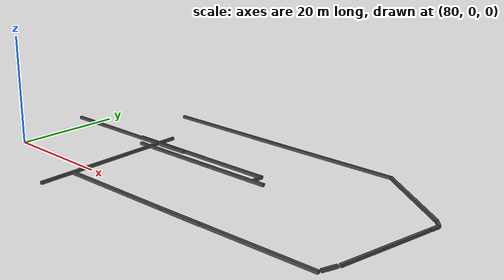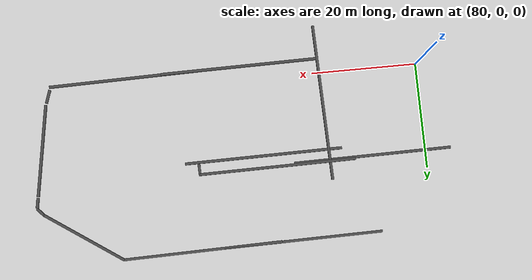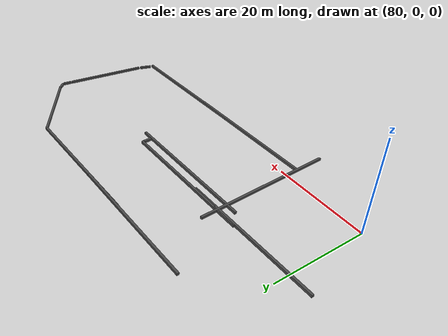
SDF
<sdf version="1.6">
 <world name="default">
  <model name="asphalt_box_clone_9_clone_clone_0">
   <static>1</static>
   <link name="link">
    <collision name="collision"><geometry><box><size>30 0.5 0.5</size></box></geometry></collision>
    <visual name="visual">
     <cast_shadows>0</cast_shadows>
     <geometry><box><size>30 0.5 0.5</size></box></geometry>
     <material>
      <script>
       <uri>model://asphalt_box/materials/scripts</uri>
       <uri>model://asphalt_box/materials/textures</uri>
       <name>vrc/asphalt</name>
      </script>
     </material>
    </visual>
   </link>
   <pose>104.684 31.4537 0 0 -0 0.016111</pose>
  </model>
  <model name="asphalt_box_clone_9_clone_clone_1">
   <static>1</static>
   <link name="link">
    <collision name="collision"><geometry><box><size>30 0.5 0.5</size></box></geometry></collision>
    <visual name="visual">
     <cast_shadows>0</cast_shadows>
     <geometry><box><size>30 0.5 0.5</size></box></geometry>
     <material>
      <script>
       <uri>model://asphalt_box/materials/scripts</uri>
       <uri>model://asphalt_box/materials/textures</uri>
       <name>vrc/asphalt</name>
      </script>
     </material>
    </visual>
   </link>
   <pose>123.741 31.7823 0 0 -0 0.022248</pose>
  </model>
  <model name="asphalt_box_clone_9_clone_clone_1_clone">
   <static>1</static>
   <link name="link">
    <collision name="collision"><geometry><box><size>30 0.5 0.5</size></box></geometry></collision>
    <visual name="visual">
     <cast_shadows>0</cast_shadows>
     <geometry><box><size>30 0.5 0.5</size></box></geometry>
     <material>
      <script>
       <uri>model://asphalt_box/materials/scripts</uri>
       <uri>model://asphalt_box/materials/textures</uri>
       <name>vrc/asphalt</name>
      </script>
     </material>
    </visual>
   </link>
   <pose>113.953 -2.71493 0 0 -0 0.012015</pose>
  </model>
  <model name="asphalt_box_clone_9_clone_clone_1_clone_clone">
   <static>1</static>
   <link name="link">
    <collision name="collision"><geometry><box><size>30 0.5 0.5</size></box></geometry></collision>
    <visual name="visual">
     <cast_shadows>0</cast_shadows>
     <geometry><box><size>30 0.5 0.5</size></box></geometry>
     <material>
      <script>
       <uri>model://asphalt_box/materials/scripts</uri>
       <uri>model://asphalt_box/materials/textures</uri>
       <name>vrc/asphalt</name>
      </script>
     </material>
    </visual>
   </link>
   <pose>135.515 -2.33478 0 0 -0 0.020249</pose>
  </model>
  <model name="asphalt_box_clone_10_clone_2">
   <static>1</static>
   <link name="link">
    <collision name="collision"><geometry><box><size>29.9999 0.5 0.5</size></box></geometry></collision>
    <visual name="visual">
     <cast_shadows>0</cast_shadows>
     <geometry><box><size>29.9999 0.5 0.5</size></box></geometry>
     <material>
      <script>
       <uri>model://asphalt_box/materials/scripts</uri>
       <uri>model://asphalt_box/materials/textures</uri>
       <name>vrc/asphalt</name>
      </script>
     </material>
    </visual>
   </link>
   <pose>98.4703 5.66937 0 0 0 -1.54232</pose>
  </model>
  <model name="asphalt_box_clone_10_clone_2_clone">
   <static>1</static>
   <link name="link">
    <collision name="collision"><geometry><box><size>17.6232 0.5 0.5</size></box></geometry></collision>
    <visual name="visual">
     <cast_shadows>0</cast_shadows>
     <geometry><box><size>17.6232 0.5 0.5</size></box></geometry>
     <material>
      <script>
       <uri>model://asphalt_box/materials/scripts</uri>
       <uri>model://asphalt_box/materials/textures</uri>
       <name>vrc/asphalt</name>
      </script>
     </material>
    </visual>
   </link>
   <pose>152.733 10.1055 0 0 0 -1.72192</pose>
  </model>
  <model name="asphalt_box_clone_10_clone_2_clone_clone">
   <static>1</static>
   <link name="link">
    <collision name="collision"><geometry><box><size>17.6232 0.5 0.5</size></box></geometry></collision>
    <visual name="visual">
     <cast_shadows>0</cast_shadows>
     <geometry><box><size>17.6232 0.5 0.5</size></box></geometry>
     <material>
      <script>
       <uri>model://asphalt_box/materials/scripts</uri>
       <uri>model://asphalt_box/materials/textures</uri>
       <name>vrc/asphalt</name>
      </script>
     </material>
    </visual>
   </link>
   <pose>145.987 27.2357 0 0 0 -0.593263</pose>
  </model>
  <model name="asphalt_box_clone_10_clone_1_clone_1_clone_1_clone_clone_1_clone_clone_clone_clone_clone_clone_clone_0_clone_clone_0">
   <static>1</static>
   <link name="link">
    <collision name="collision"><geometry><box><size>1.96342 0.5 0.5</size></box></geometry></collision>
    <visual name="visual">
     <cast_shadows>0</cast_shadows>
     <geometry><box><size>1.96342 0.5 0.5</size></box></geometry>
     <material>
      <script>
       <uri>model://asphalt_box/materials/scripts</uri>
       <uri>model://asphalt_box/materials/textures</uri>
       <name>vrc/asphalt</name>
      </script>
     </material>
    </visual>
   </link>
   <pose>153.723 21.7934 0 0 0 -0.81996</pose>
  </model>
  <model name="asphalt_box_clone_10_clone_1_clone_1_clone_1_clone_clone_1_clone_clone_clone_clone_clone_clone_clone_0_clone_clone_0_clone">
   <static>1</static>
   <link name="link">
    <collision name="collision"><geometry><box><size>1.96342 0.5 0.5</size></box></geometry></collision>
    <visual name="visual">
     <cast_shadows>0</cast_shadows>
     <geometry><box><size>1.96342 0.5 0.5</size></box></geometry>
     <material>
      <script>
       <uri>model://asphalt_box/materials/scripts</uri>
       <uri>model://asphalt_box/materials/textures</uri>
       <name>vrc/asphalt</name>
      </script>
     </material>
    </visual>
   </link>
   <pose>154.242 19.9731 0 0 0 -1.72359</pose>
  </model>
  <model name="asphalt_box_clone_9_clone_clone_1_clone_clone_0">
   <static>1</static>
   <link name="link">
    <collision name="collision"><geometry><box><size>30 0.5 0.5</size></box></geometry></collision>
    <visual name="visual">
     <cast_shadows>0</cast_shadows>
     <geometry><box><size>30 0.5 0.5</size></box></geometry>
     <material>
      <script>
       <uri>model://asphalt_box/materials/scripts</uri>
       <uri>model://asphalt_box/materials/textures</uri>
       <name>vrc/asphalt</name>
      </script>
     </material>
    </visual>
   </link>
   <pose>90.0352 16.7233 0 0 -0 0.012015</pose>
  </model>
  <model name="asphalt_box_clone_9_clone_clone_1_clone_clone_1">
   <static>1</static>
   <link name="link">
    <collision name="collision"><geometry><box><size>30 0.5 0.5</size></box></geometry></collision>
    <visual name="visual">
     <cast_shadows>0</cast_shadows>
     <geometry><box><size>30 0.5 0.5</size></box></geometry>
     <material>
      <script>
       <uri>model://asphalt_box/materials/scripts</uri>
       <uri>model://asphalt_box/materials/textures</uri>
       <name>vrc/asphalt</name>
      </script>
     </material>
    </visual>
   </link>
   <pose>108.274 17.2216 0 0 -0 0.012015</pose>
  </model>
  <model name="asphalt_box_clone_10_clone_1_clone_1_clone_1_clone_clone_1_clone_clone_clone_clone_clone_clone_clone_0_clone_clone_0_clone_0">
   <static>1</static>
   <link name="link">
    <collision name="collision"><geometry><box><size>1.96342 0.5 0.5</size></box></geometry></collision>
    <visual name="visual">
     <cast_shadows>0</cast_shadows>
     <geometry><box><size>1.96342 0.5 0.5</size></box></geometry>
     <material>
      <script>
       <uri>model://asphalt_box/materials/scripts</uri>
       <uri>model://asphalt_box/materials/textures</uri>
       <name>vrc/asphalt</name>
      </script>
     </material>
    </visual>
   </link>
   <pose>123.12 16.3757 0 0 0 -1.53712</pose>
  </model>
  <model name="asphalt_box_clone_9_clone_clone_1_clone_clone_1_clone">
   <static>1</static>
   <link name="link">
    <collision name="collision"><geometry><box><size>30 0.5 0.5</size></box></geometry></collision>
    <visual name="visual">
     <cast_shadows>0</cast_shadows>
     <geometry><box><size>30 0.5 0.5</size></box></geometry>
     <material>
      <script>
       <uri>model://asphalt_box/materials/scripts</uri>
       <uri>model://asphalt_box/materials/textures</uri>
       <name>vrc/asphalt</name>
      </script>
     </material>
    </visual>
   </link>
   <pose>110.717 14.94 0 0 -0 0.012015</pose>
  </model>
  <model name="asphalt_box_clone_10_clone_1_clone_1_clone_1_clone_clone_1_clone_clone_clone_clone_clone_clone_clone_0_clone_clone_0_clone_clone">
   <static>1</static>
   <link name="link">
    <collision name="collision"><geometry><box><size>2.61111 0.5 0.5</size></box></geometry></collision>
    <visual name="visual">
     <cast_shadows>0</cast_shadows>
     <geometry><box><size>2.61111 0.5 0.5</size></box></geometry>
     <material>
      <script>
       <uri>model://asphalt_box/materials/scripts</uri>
       <uri>model://asphalt_box/materials/textures</uri>
       <name>vrc/asphalt</name>
      </script>
     </material>
    </visual>
   </link>
   <pose>150.846 -0.212844 0 0.062634 0.010235 -1.88536</pose>
  </model>
 </world>
</sdf>
